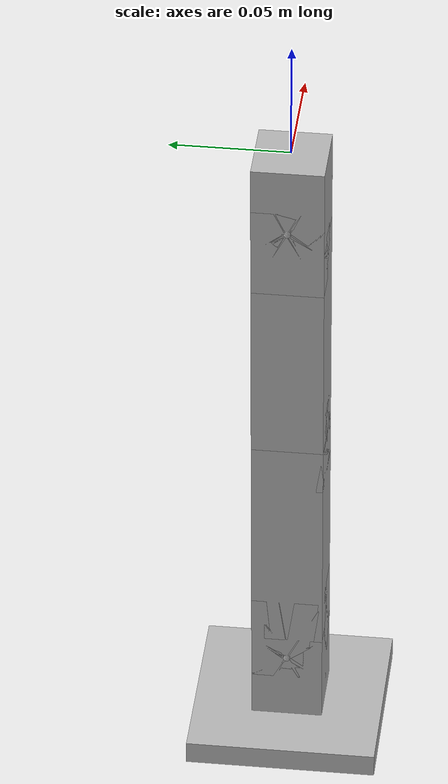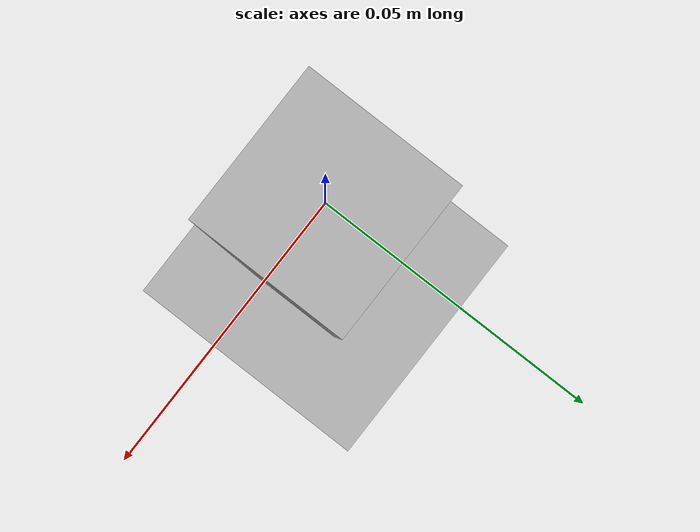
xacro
<?xml version="1.0" ?>
<robot name="Walker" xmlns:xacro="http://www.ros.org/wiki/xacro">

<xacro:include filename="$(find Walker_description)/urdf/materials.xacro" />
<xacro:include filename="$(find Walker_description)/urdf/Walker.trans" />
<xacro:include filename="$(find Walker_description)/urdf/Walker.gazebo" />
<link name="base_link">
  <inertial>
    <origin xyz="0.0 0.0 -0.019940746103482097" rpy="0 0 0"/>
    <mass value="0.28093534859267927"/>
    <inertia ixx="5.9e-05" iyy="5.9e-05" izz="4.2e-05" ixy="0.0" iyz="0.0" ixz="0.0"/>
  </inertial>
  <visual>
    <origin xyz="0 0 0" rpy="0 0 0"/>
    <geometry>
      <mesh filename="package://Walker_description/meshes/base_link.stl" scale="0.001 0.001 0.001"/>
    </geometry>
    <material name="silver"/>
  </visual>
  <collision>
    <origin xyz="0 0 0" rpy="0 0 0"/>
    <geometry>
      <mesh filename="package://Walker_description/meshes/base_link.stl" scale="0.001 0.001 0.001"/>
    </geometry>
  </collision>
</link>

<link name="hip_roll_1">
  <inertial>
    <origin xyz="-0.015000000000000097 8.898885287580091e-16 -0.009999999999998191" rpy="0 0 0"/>
    <mass value="0.2792706971853587"/>
    <inertia ixx="5.8e-05" iyy="5.8e-05" izz="4.2e-05" ixy="0.0" iyz="-0.0" ixz="0.0"/>
  </inertial>
  <visual>
    <origin xyz="-0.015 -0.0 0.03" rpy="0 0 0"/>
    <geometry>
      <mesh filename="package://Walker_description/meshes/hip_roll_1.stl" scale="0.001 0.001 0.001"/>
    </geometry>
    <material name="silver"/>
  </visual>
  <collision>
    <origin xyz="-0.015 -0.0 0.03" rpy="0 0 0"/>
    <geometry>
      <mesh filename="package://Walker_description/meshes/hip_roll_1.stl" scale="0.001 0.001 0.001"/>
    </geometry>
  </collision>
</link>

<link name="thigh_1">
  <inertial>
    <origin xyz="-3.675018476364042e-16 -0.015000000000000213 -0.040000000000000216" rpy="0 0 0"/>
    <mass value="0.7031706971853584"/>
    <inertia ixx="0.000636" iyy="0.000636" izz="0.000106" ixy="-0.0" iyz="-0.0" ixz="0.0"/>
  </inertial>
  <visual>
    <origin xyz="0.0 -0.015 0.05" rpy="0 0 0"/>
    <geometry>
      <mesh filename="package://Walker_description/meshes/thigh_1.stl" scale="0.001 0.001 0.001"/>
    </geometry>
    <material name="silver"/>
  </visual>
  <collision>
    <origin xyz="0.0 -0.015 0.05" rpy="0 0 0"/>
    <geometry>
      <mesh filename="package://Walker_description/meshes/thigh_1.stl" scale="0.001 0.001 0.001"/>
    </geometry>
  </collision>
</link>

<link name="knee_1">
  <inertial>
    <origin xyz="-1.7593300251577167e-15 -0.01499999999999996 -0.009999999999999898" rpy="0 0 0"/>
    <mass value="0.27927069718535813"/>
    <inertia ixx="5.8e-05" iyy="5.9e-05" izz="4.2e-05" ixy="0.0" iyz="-0.0" ixz="-0.0"/>
  </inertial>
  <visual>
    <origin xyz="-0.0 -0.015 0.13" rpy="0 0 0"/>
    <geometry>
      <mesh filename="package://Walker_description/meshes/knee_1.stl" scale="0.001 0.001 0.001"/>
    </geometry>
    <material name="silver"/>
  </visual>
  <collision>
    <origin xyz="-0.0 -0.015 0.13" rpy="0 0 0"/>
    <geometry>
      <mesh filename="package://Walker_description/meshes/knee_1.stl" scale="0.001 0.001 0.001"/>
    </geometry>
  </collision>
</link>

<link name="shin_1">
  <inertial>
    <origin xyz="5.248353906337566e-09 -0.014999999999999809 -0.03999998244649275" rpy="0 0 0"/>
    <mass value="0.7031704499676481"/>
    <inertia ixx="0.000636" iyy="0.000636" izz="0.000106" ixy="0.0" iyz="-0.0" ixz="0.0"/>
  </inertial>
  <visual>
    <origin xyz="-0.0 -0.015 0.15" rpy="0 0 0"/>
    <geometry>
      <mesh filename="package://Walker_description/meshes/shin_1.stl" scale="0.001 0.001 0.001"/>
    </geometry>
    <material name="silver"/>
  </visual>
  <collision>
    <origin xyz="-0.0 -0.015 0.15" rpy="0 0 0"/>
    <geometry>
      <mesh filename="package://Walker_description/meshes/shin_1.stl" scale="0.001 0.001 0.001"/>
    </geometry>
  </collision>
</link>

<link name="ankle_1">
  <inertial>
    <origin xyz="-7.240003152659723e-16 -0.015000000000000237 -0.009999999999997067" rpy="0 0 0"/>
    <mass value="0.27927069718535824"/>
    <inertia ixx="5.8e-05" iyy="5.8e-05" izz="4.2e-05" ixy="-0.0" iyz="-0.0" ixz="0.0"/>
  </inertial>
  <visual>
    <origin xyz="-0.0 -0.015 0.23" rpy="0 0 0"/>
    <geometry>
      <mesh filename="package://Walker_description/meshes/ankle_1.stl" scale="0.001 0.001 0.001"/>
    </geometry>
    <material name="silver"/>
  </visual>
  <collision>
    <origin xyz="-0.0 -0.015 0.23" rpy="0 0 0"/>
    <geometry>
      <mesh filename="package://Walker_description/meshes/ankle_1.stl" scale="0.001 0.001 0.001"/>
    </geometry>
  </collision>
</link>

<link name="ankle_roll_1">
  <inertial>
    <origin xyz="-0.014999999999999404 6.39785483460577e-16 -0.009999999999997178" rpy="0 0 0"/>
    <mass value="0.2792706971853587"/>
    <inertia ixx="5.8e-05" iyy="5.8e-05" izz="4.2e-05" ixy="0.0" iyz="-0.0" ixz="-0.0"/>
  </inertial>
  <visual>
    <origin xyz="-0.015 0.0 0.25" rpy="0 0 0"/>
    <geometry>
      <mesh filename="package://Walker_description/meshes/ankle_roll_1.stl" scale="0.001 0.001 0.001"/>
    </geometry>
    <material name="silver"/>
  </visual>
  <collision>
    <origin xyz="-0.015 0.0 0.25" rpy="0 0 0"/>
    <geometry>
      <mesh filename="package://Walker_description/meshes/ankle_roll_1.stl" scale="0.001 0.001 0.001"/>
    </geometry>
  </collision>
</link>

<link name="foot_1">
  <inertial>
    <origin xyz="6.245004505575571e-16 -2.76128590171539e-16 -0.004999999999999394" rpy="0 0 0"/>
    <mass value="0.5024"/>
    <inertia ixx="0.000272" iyy="0.000272" izz="0.000536" ixy="0.0" iyz="-0.0" ixz="-0.0"/>
  </inertial>
  <visual>
    <origin xyz="-0.0 0.0 0.28" rpy="0 0 0"/>
    <geometry>
      <mesh filename="package://Walker_description/meshes/foot_1.stl" scale="0.001 0.001 0.001"/>
    </geometry>
    <material name="silver"/>
  </visual>
  <collision>
    <origin xyz="-0.0 0.0 0.28" rpy="0 0 0"/>
    <geometry>
      <mesh filename="package://Walker_description/meshes/foot_1.stl" scale="0.001 0.001 0.001"/>
    </geometry>
  </collision>
</link>

<joint name="hip_roll" type="continuous">
  <origin xyz="0.015 0.0 -0.03" rpy="0 0 0"/>
  <parent link="base_link"/>
  <child link="hip_roll_1"/>
  <axis xyz="1.0 0.0 0.0"/>
</joint>

<joint name="hip_pitch" type="continuous">
  <origin xyz="-0.015 0.015 -0.02" rpy="0 0 0"/>
  <parent link="hip_roll_1"/>
  <child link="thigh_1"/>
  <axis xyz="-0.0 -1.0 0.0"/>
</joint>

<joint name="knee_pitch1" type="continuous">
  <origin xyz="0.0 0.0 -0.08" rpy="0 0 0"/>
  <parent link="thigh_1"/>
  <child link="knee_1"/>
  <axis xyz="-0.0 1.0 -0.0"/>
</joint>

<joint name="knee_pitch2" type="continuous">
  <origin xyz="0.0 0.0 -0.02" rpy="0 0 0"/>
  <parent link="knee_1"/>
  <child link="shin_1"/>
  <axis xyz="0.0 1.0 -0.0"/>
</joint>

<joint name="ankle_pitch" type="continuous">
  <origin xyz="0.0 0.0 -0.08" rpy="0 0 0"/>
  <parent link="shin_1"/>
  <child link="ankle_1"/>
  <axis xyz="0.0 1.0 -0.0"/>
</joint>

<joint name="ankle_roll" type="continuous">
  <origin xyz="0.015 -0.015 -0.02" rpy="0 0 0"/>
  <parent link="ankle_1"/>
  <child link="ankle_roll_1"/>
  <axis xyz="1.0 -0.0 0.0"/>
</joint>

<joint name="Rigid 120" type="fixed">
  <origin xyz="-0.015 0.0 -0.03" rpy="0 0 0"/>
  <parent link="ankle_roll_1"/>
  <child link="foot_1"/>
</joint>

</robot>

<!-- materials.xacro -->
<robot name="Walker" xmlns:xacro="http://www.ros.org/wiki/xacro" >

<material name="silver">
  <color rgba="0.700 0.700 0.700 1.000"/>
</material>

</robot>

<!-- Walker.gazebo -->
<robot name="Walker" xmlns:xacro="http://www.ros.org/wiki/xacro" >

<xacro:property name="body_color" value="Gazebo/Silver" />

<gazebo>
  <plugin name="control" filename="libgazebo_ros_control.so"/>
</gazebo>
<gazebo reference="base_link">
  <material>${body_color}</material>
  <mu1>0.2</mu1>
  <mu2>0.2</mu2>
  <selfCollide>true</selfCollide>
  <gravity>true</gravity>
</gazebo>

<gazebo reference="hip_roll_1">
  <material>${body_color}</material>
  <mu1>0.2</mu1>
  <mu2>0.2</mu2>
  <selfCollide>true</selfCollide>
</gazebo>

<gazebo reference="thigh_1">
  <material>${body_color}</material>
  <mu1>0.2</mu1>
  <mu2>0.2</mu2>
  <selfCollide>true</selfCollide>
</gazebo>

<gazebo reference="knee_1">
  <material>${body_color}</material>
  <mu1>0.2</mu1>
  <mu2>0.2</mu2>
  <selfCollide>true</selfCollide>
</gazebo>

<gazebo reference="shin_1">
  <material>${body_color}</material>
  <mu1>0.2</mu1>
  <mu2>0.2</mu2>
  <selfCollide>true</selfCollide>
</gazebo>

<gazebo reference="ankle_1">
  <material>${body_color}</material>
  <mu1>0.2</mu1>
  <mu2>0.2</mu2>
  <selfCollide>true</selfCollide>
</gazebo>

<gazebo reference="ankle_roll_1">
  <material>${body_color}</material>
  <mu1>0.2</mu1>
  <mu2>0.2</mu2>
  <selfCollide>true</selfCollide>
</gazebo>

<gazebo reference="foot_1">
  <material>${body_color}</material>
  <mu1>0.2</mu1>
  <mu2>0.2</mu2>
  <selfCollide>true</selfCollide>
</gazebo>

</robot>
